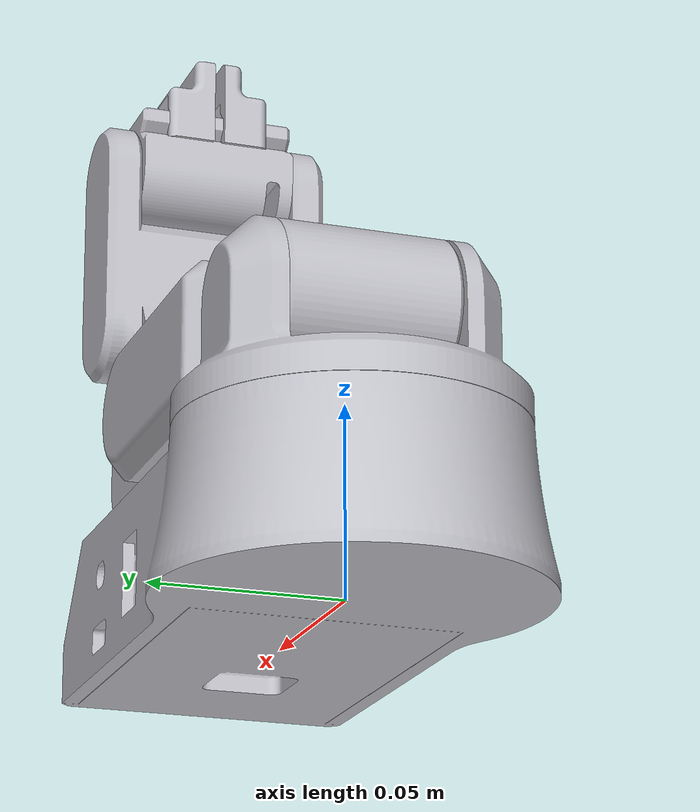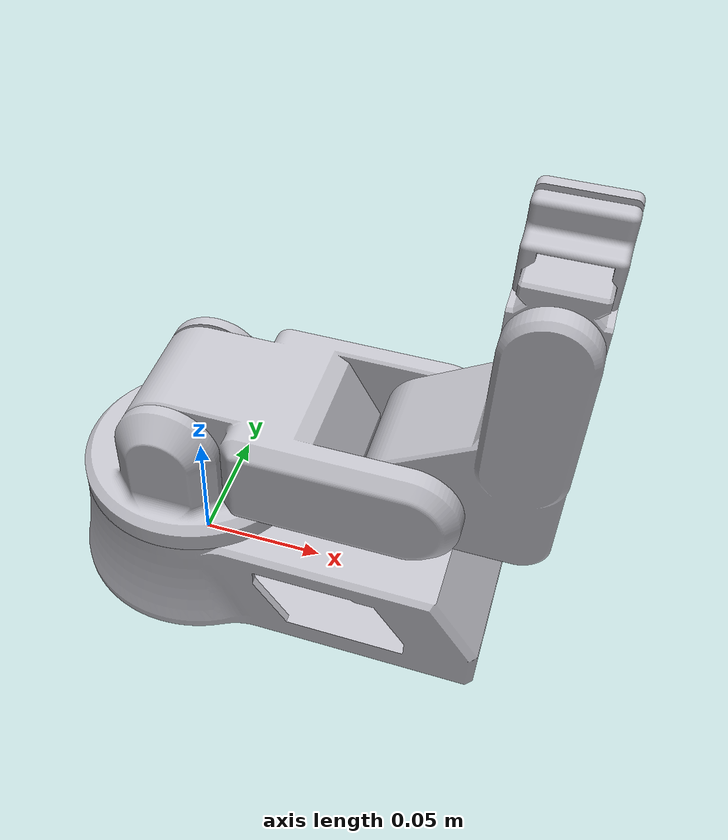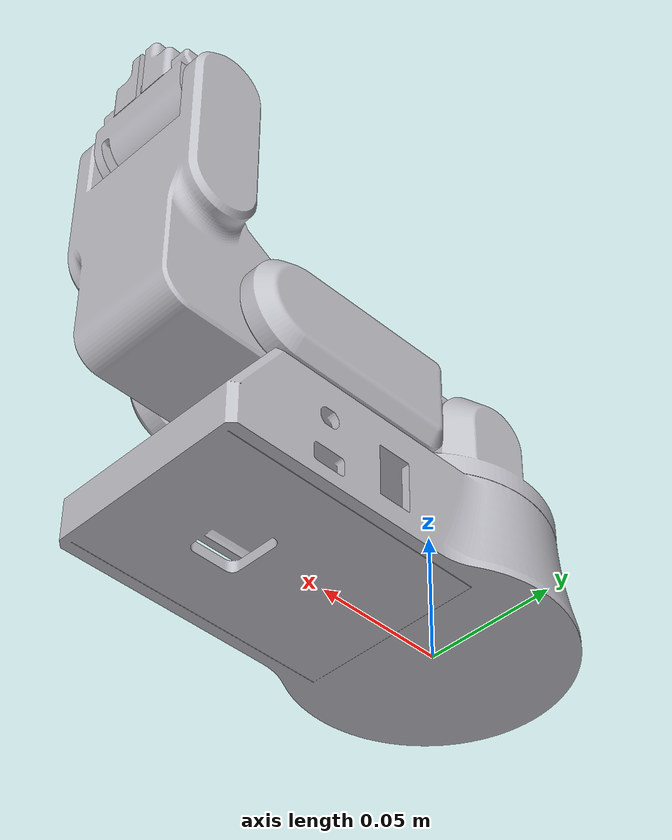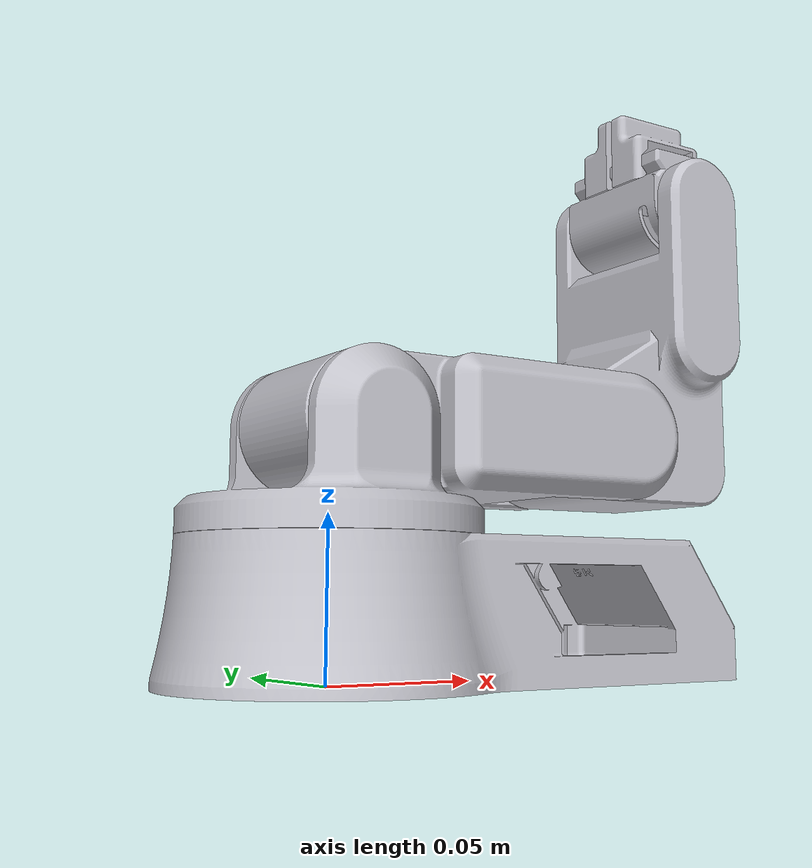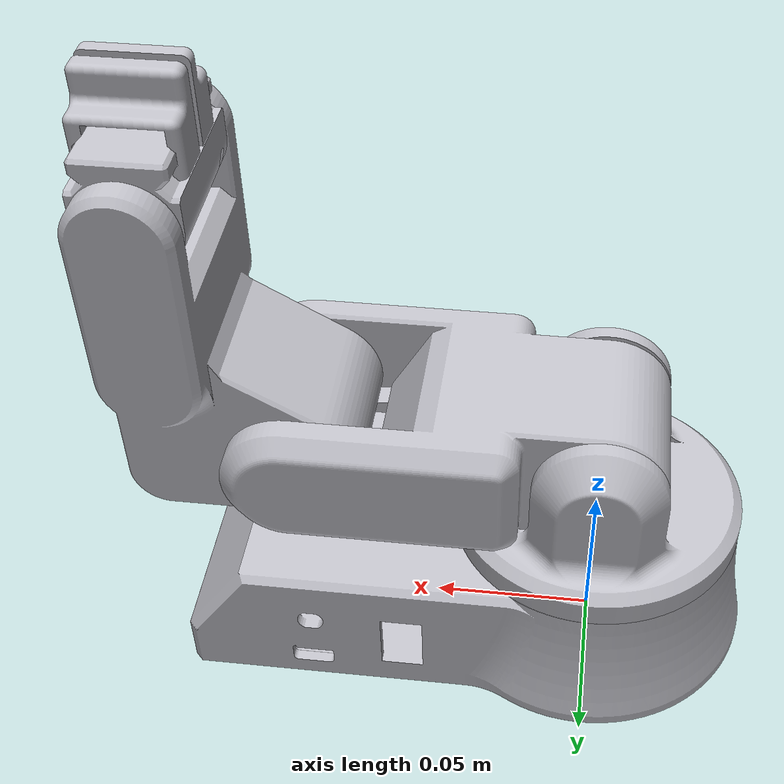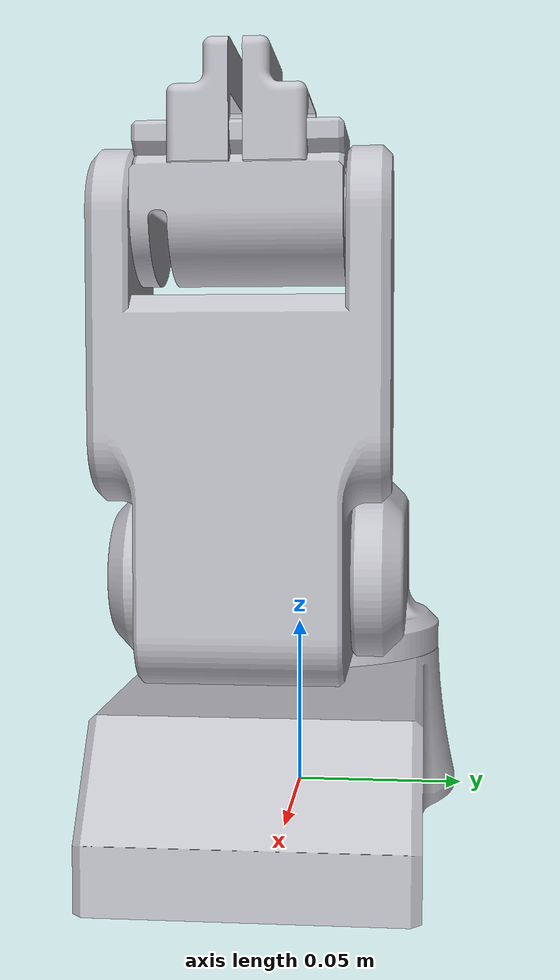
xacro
<?xml version="1.0" ?>
<robot name="URDF" xmlns:xacro="http://www.ros.org/wiki/xacro">

<xacro:include filename="$(find URDF_description)/urdf/materials.xacro" />
<xacro:include filename="$(find URDF_description)/urdf/URDF.trans" />
<xacro:include filename="$(find URDF_description)/urdf/URDF.gazebo" />
<link name="base_link">
  <inertial>
    <origin xyz="0.02757835168065654 -0.0012714294173644097 0.022367518944238496" rpy="0 0 0"/>
    <mass value="1.651301058813082"/>
    <inertia ixx="0.001672" iyy="0.004335" izz="0.005152" ixy="-4.5e-05" iyz="2e-06" ixz="0.000107"/>
  </inertial>
  <visual>
    <origin xyz="0 0 0" rpy="0 0 0"/>
    <geometry>
      <mesh filename="package://URDF_description/meshes/base_link.stl" scale="0.001 0.001 0.001"/>
    </geometry>
    <material name="silver"/>
  </visual>
  <collision>
    <origin xyz="0 0 0" rpy="0 0 0"/>
    <geometry>
      <mesh filename="package://URDF_description/meshes/base_link.stl" scale="0.001 0.001 0.001"/>
    </geometry>
  </collision>
</link>

<link name="Joint1_v3_1">
  <inertial>
    <origin xyz="0.0004961970327357381 -0.0006633192568900881 0.020722890370871286" rpy="0 0 0"/>
    <mass value="0.5225966320733053"/>
    <inertia ixx="0.000471" iyy="0.000299" izz="0.000582" ixy="-0.0" iyz="6e-06" ixz="1e-06"/>
  </inertial>
  <visual>
    <origin xyz="0.000121 0.001909 -0.038755" rpy="0 0 0"/>
    <geometry>
      <mesh filename="package://URDF_description/meshes/Joint1_v3_1.stl" scale="0.001 0.001 0.001"/>
    </geometry>
    <material name="silver"/>
  </visual>
  <collision>
    <origin xyz="0.000121 0.001909 -0.038755" rpy="0 0 0"/>
    <geometry>
      <mesh filename="package://URDF_description/meshes/Joint1_v3_1.stl" scale="0.001 0.001 0.001"/>
    </geometry>
  </collision>
</link>

<link name="Joint2_v2_1">
  <inertial>
    <origin xyz="0.05014320929767556 -0.021322379588068822 -0.00013894896909531773" rpy="0 0 0"/>
    <mass value="0.6716055837586975"/>
    <inertia ixx="0.000573" iyy="0.000828" izz="0.001186" ixy="-4.7e-05" iyz="-2e-06" ixz="2e-06"/>
  </inertial>
  <visual>
    <origin xyz="0.00013 -0.021091 -0.0756" rpy="0 0 0"/>
    <geometry>
      <mesh filename="package://URDF_description/meshes/Joint2_v2_1.stl" scale="0.001 0.001 0.001"/>
    </geometry>
    <material name="silver"/>
  </visual>
  <collision>
    <origin xyz="0.00013 -0.021091 -0.0756" rpy="0 0 0"/>
    <geometry>
      <mesh filename="package://URDF_description/meshes/Joint2_v2_1.stl" scale="0.001 0.001 0.001"/>
    </geometry>
  </collision>
</link>

<link name="Joint3_v3_1">
  <inertial>
    <origin xyz="-0.028957797251960016 -0.02280934199022625 0.026972120936257574" rpy="0 0 0"/>
    <mass value="0.528254890846866"/>
    <inertia ixx="0.00044" iyy="0.000733" izz="0.000785" ixy="1e-05" iyz="-1.9e-05" ixz="0.000122"/>
  </inertial>
  <visual>
    <origin xyz="-0.08987 -0.021091 -0.0756" rpy="0 0 0"/>
    <geometry>
      <mesh filename="package://URDF_description/meshes/Joint3_v3_1.stl" scale="0.001 0.001 0.001"/>
    </geometry>
    <material name="silver"/>
  </visual>
  <collision>
    <origin xyz="-0.08987 -0.021091 -0.0756" rpy="0 0 0"/>
    <geometry>
      <mesh filename="package://URDF_description/meshes/Joint3_v3_1.stl" scale="0.001 0.001 0.001"/>
    </geometry>
  </collision>
</link>

<link name="Joint4_v2_1">
  <inertial>
    <origin xyz="-0.0028447177224447872 -0.022856832574041672 -7.576042054535659e-07" rpy="0 0 0"/>
    <mass value="0.2379240133342924"/>
    <inertia ixx="8.6e-05" iyy="3.5e-05" izz="8.6e-05" ixy="-4e-06" iyz="-0.0" ixz="0.0"/>
  </inertial>
  <visual>
    <origin xyz="-0.007167 -0.021591 -0.1111" rpy="0 0 0"/>
    <geometry>
      <mesh filename="package://URDF_description/meshes/Joint4_v2_1.stl" scale="0.001 0.001 0.001"/>
    </geometry>
    <material name="silver"/>
  </visual>
  <collision>
    <origin xyz="-0.007167 -0.021591 -0.1111" rpy="0 0 0"/>
    <geometry>
      <mesh filename="package://URDF_description/meshes/Joint4_v2_1.stl" scale="0.001 0.001 0.001"/>
    </geometry>
  </collision>
</link>

<link name="left_jaw_1">
  <inertial>
    <origin xyz="-0.008029717819033022 0.016233468870599073 -0.00020973773489395275" rpy="0 0 0"/>
    <mass value="0.02684775454507079"/>
    <inertia ixx="3e-06" iyy="4e-06" izz="1e-06" ixy="0.0" iyz="-0.0" ixz="0.0"/>
  </inertial>
  <visual>
    <origin xyz="0.010333 0.023909 -0.1111" rpy="0 0 0"/>
    <geometry>
      <mesh filename="package://URDF_description/meshes/left_jaw_1.stl" scale="0.001 0.001 0.001"/>
    </geometry>
    <material name="silver"/>
  </visual>
  <collision>
    <origin xyz="0.010333 0.023909 -0.1111" rpy="0 0 0"/>
    <geometry>
      <mesh filename="package://URDF_description/meshes/left_jaw_1.stl" scale="0.001 0.001 0.001"/>
    </geometry>
  </collision>
</link>

<link name="right_jaw_1">
  <inertial>
    <origin xyz="-0.008029685775077193 -0.0162340079404132 0.00020964197023824738" rpy="0 0 0"/>
    <mass value="0.026847764745505966"/>
    <inertia ixx="3e-06" iyy="4e-06" izz="1e-06" ixy="-0.0" iyz="-0.0" ixz="-0.0"/>
  </inertial>
  <visual>
    <origin xyz="0.010333 -0.021091 -0.1111" rpy="0 0 0"/>
    <geometry>
      <mesh filename="package://URDF_description/meshes/right_jaw_1.stl" scale="0.001 0.001 0.001"/>
    </geometry>
    <material name="silver"/>
  </visual>
  <collision>
    <origin xyz="0.010333 -0.021091 -0.1111" rpy="0 0 0"/>
    <geometry>
      <mesh filename="package://URDF_description/meshes/right_jaw_1.stl" scale="0.001 0.001 0.001"/>
    </geometry>
  </collision>
</link>

<joint name="Revolute1" type="revolute">
  <origin xyz="-0.000121 -0.001909 0.038755" rpy="0 0 0"/>
  <parent link="base_link"/>
  <child link="Joint1_v3_1"/>
  <axis xyz="0.0 0.0 1.0"/>
  <limit upper="1.570796" lower="-1.570796" effort="100" velocity="100"/>
</joint>

<joint name="Revolute2" type="revolute">
  <origin xyz="-9e-06 0.023 0.036845" rpy="0 0 0"/>
  <parent link="Joint1_v3_1"/>
  <child link="Joint2_v2_1"/>
  <axis xyz="0.0 -1.0 0.0"/>
  <limit upper="3.141593" lower="0.0" effort="100" velocity="100"/>
</joint>

<joint name="Revolute3" type="revolute">
  <origin xyz="0.09 0.0 0.0" rpy="0 0 0"/>
  <parent link="Joint2_v2_1"/>
  <child link="Joint3_v3_1"/>
  <axis xyz="0.0 -1.0 0.0"/>
  <limit upper="6.283185" lower="3.141593" effort="100" velocity="100"/>
</joint>

<joint name="Revolute4" type="revolute">
  <origin xyz="-0.082703 0.0005 0.0355" rpy="0 0 0"/>
  <parent link="Joint3_v3_1"/>
  <child link="Joint4_v2_1"/>
  <axis xyz="0.0 -1.0 0.0"/>
  <limit upper="1.570796" lower="-1.570796" effort="100" velocity="100"/>
</joint>

<joint name="Slider5" type="prismatic">
  <origin xyz="-0.0175 -0.0455 0.0" rpy="0 0 0"/>
  <parent link="Joint4_v2_1"/>
  <child link="left_jaw_1"/>
  <axis xyz="0.0 -1.0 0.0"/>
  <limit upper="0.006" lower="0.0" effort="100" velocity="100"/>
</joint>

<joint name="Slider6" type="prismatic">
  <origin xyz="-0.0175 -0.0005 0.0" rpy="0 0 0"/>
  <parent link="Joint4_v2_1"/>
  <child link="right_jaw_1"/>
  <axis xyz="0.0 1.0 -0.0"/>
  <limit upper="0.006" lower="0.0" effort="100" velocity="100"/>
</joint>

</robot>

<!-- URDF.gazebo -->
<robot name="URDF" xmlns:xacro="http://www.ros.org/wiki/xacro" >

<xacro:property name="body_color" value="Gazebo/Silver" />

<gazebo>
  <plugin name="control" filename="libgazebo_ros_control.so"/>
</gazebo>
<gazebo reference="base_link">
  <material>${body_color}</material>
  <mu1>0.2</mu1>
  <mu2>0.2</mu2>
  <selfCollide>true</selfCollide>
  <gravity>true</gravity>
</gazebo>

<gazebo reference="Joint1_v3_1">
  <material>${body_color}</material>
  <mu1>0.2</mu1>
  <mu2>0.2</mu2>
  <selfCollide>true</selfCollide>
</gazebo>

<gazebo reference="Joint2_v2_1">
  <material>${body_color}</material>
  <mu1>0.2</mu1>
  <mu2>0.2</mu2>
  <selfCollide>true</selfCollide>
</gazebo>

<gazebo reference="Joint3_v3_1">
  <material>${body_color}</material>
  <mu1>0.2</mu1>
  <mu2>0.2</mu2>
  <selfCollide>true</selfCollide>
</gazebo>

<gazebo reference="Joint4_v2_1">
  <material>${body_color}</material>
  <mu1>0.2</mu1>
  <mu2>0.2</mu2>
  <selfCollide>true</selfCollide>
</gazebo>

<gazebo reference="left_jaw_1">
  <material>${body_color}</material>
  <mu1>0.2</mu1>
  <mu2>0.2</mu2>
  <selfCollide>true</selfCollide>
</gazebo>

<gazebo reference="right_jaw_1">
  <material>${body_color}</material>
  <mu1>0.2</mu1>
  <mu2>0.2</mu2>
  <selfCollide>true</selfCollide>
</gazebo>

</robot>
